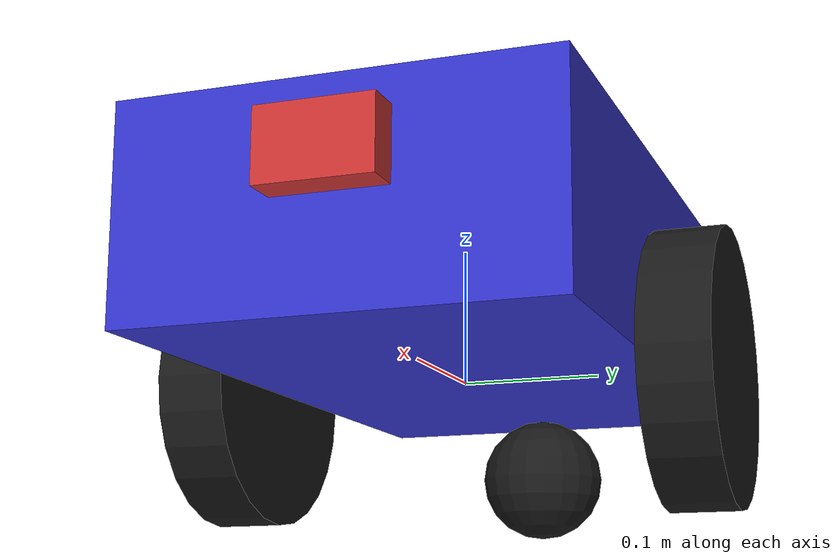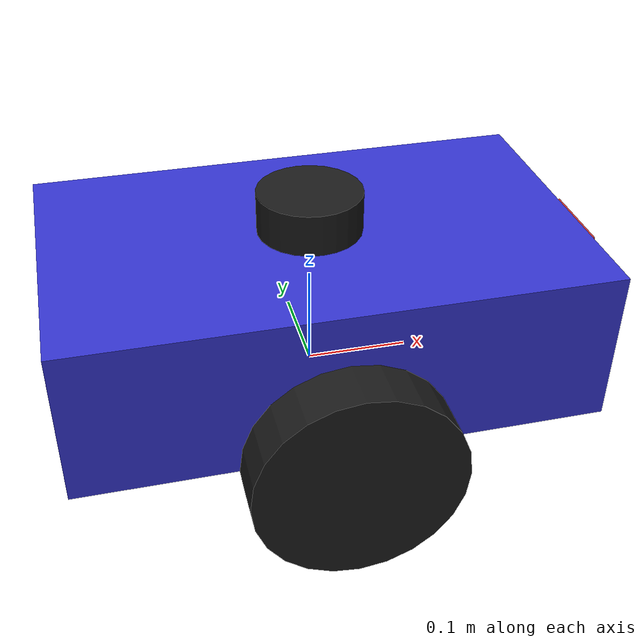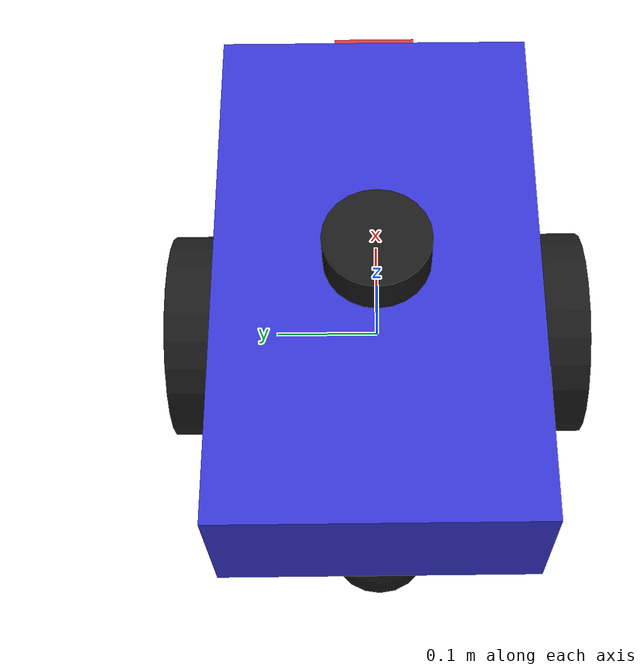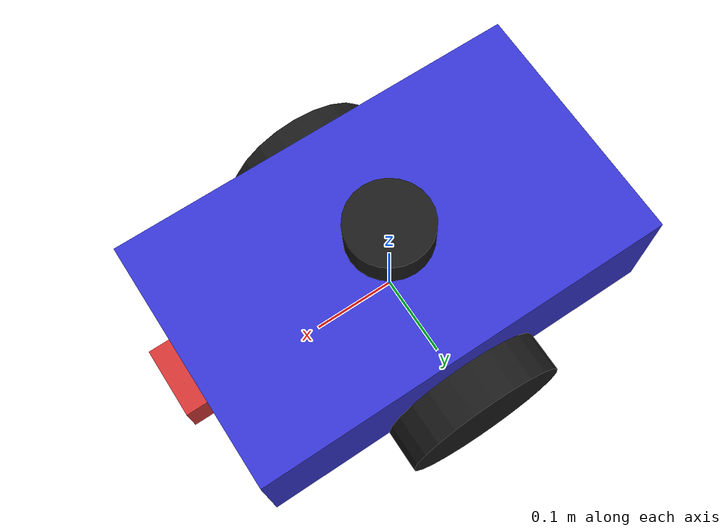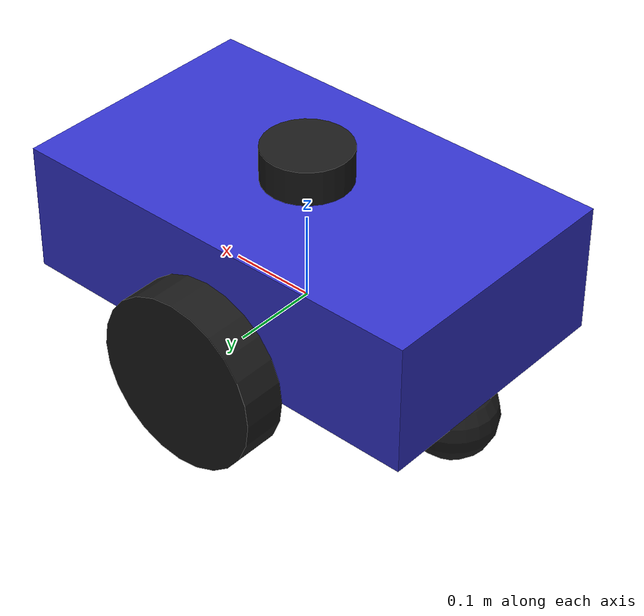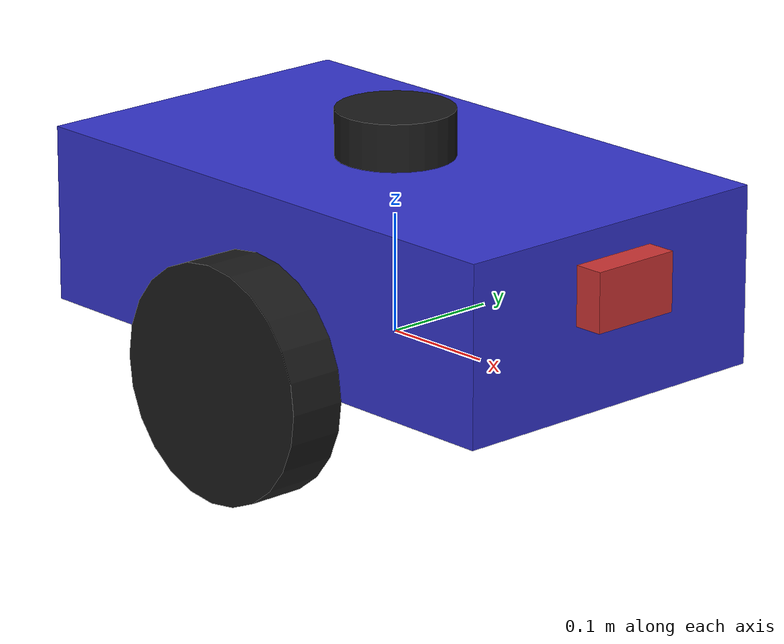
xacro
<?xml version="1.0"?>
<robot name="autonomous_robot" xmlns:xacro="http://www.ros.org/wiki/xacro">

  <!-- Define colors -->
  <material name="blue">
    <color rgba="0.2 0.2 0.8 1"/>
  </material>
  <material name="black">
    <color rgba="0.1 0.1 0.1 1"/>
  </material>
  <material name="red">
    <color rgba="0.8 0.2 0.2 1"/>
  </material>

  <!-- Base Link -->
  <link name="base_link">
    <visual>
      <geometry>
        <box size="0.5 0.3 0.15"/>
      </geometry>
      <origin xyz="0 0 0.075" rpy="0 0 0"/>
      <material name="blue"/>
    </visual>
    <collision>
      <geometry>
        <box size="0.5 0.3 0.15"/>
      </geometry>
      <origin xyz="0 0 0.075" rpy="0 0 0"/>
    </collision>
    <inertial>
      <mass value="10.0"/>
      <origin xyz="0 0 0.075" rpy="0 0 0"/>
      <inertia ixx="0.1" ixy="0.0" ixz="0.0" iyy="0.1" iyz="0.0" izz="0.1"/>
    </inertial>
  </link>

  <!-- Left Wheel -->
  <link name="left_wheel">
    <visual>
      <geometry>
        <cylinder radius="0.1" length="0.05"/>
      </geometry>
      <origin xyz="0 0 0" rpy="1.5708 0 0"/>
      <material name="black"/>
    </visual>
    <collision>
      <geometry>
        <cylinder radius="0.1" length="0.05"/>
      </geometry>
      <origin xyz="0 0 0" rpy="1.5708 0 0"/>
    </collision>
    <inertial>
      <mass value="1.0"/>
      <origin xyz="0 0 0" rpy="1.5708 0 0"/>
      <inertia ixx="0.01" ixy="0.0" ixz="0.0" iyy="0.01" iyz="0.0" izz="0.01"/>
    </inertial>
  </link>

  <joint name="left_wheel_joint" type="continuous">
    <parent link="base_link"/>
    <child link="left_wheel"/>
    <origin xyz="0 0.175 0" rpy="0 0 0"/>
    <axis xyz="0 1 0"/>
  </joint>

  <!-- Right Wheel -->
  <link name="right_wheel">
    <visual>
      <geometry>
        <cylinder radius="0.1" length="0.05"/>
      </geometry>
      <origin xyz="0 0 0" rpy="1.5708 0 0"/>
      <material name="black"/>
    </visual>
    <collision>
      <geometry>
        <cylinder radius="0.1" length="0.05"/>
      </geometry>
      <origin xyz="0 0 0" rpy="1.5708 0 0"/>
    </collision>
    <inertial>
      <mass value="1.0"/>
      <origin xyz="0 0 0" rpy="1.5708 0 0"/>
      <inertia ixx="0.01" ixy="0.0" ixz="0.0" iyy="0.01" iyz="0.0" izz="0.01"/>
    </inertial>
  </link>

  <joint name="right_wheel_joint" type="continuous">
    <parent link="base_link"/>
    <child link="right_wheel"/>
    <origin xyz="0 -0.175 0" rpy="0 0 0"/>
    <axis xyz="0 1 0"/>
  </joint>

  <!-- Caster Wheel -->
  <link name="caster_wheel">
    <visual>
      <geometry>
        <sphere radius="0.05"/>
      </geometry>
      <material name="black"/>
    </visual>
    <collision>
      <geometry>
        <sphere radius="0.05"/>
      </geometry>
    </collision>
    <inertial>
      <mass value="0.5"/>
      <inertia ixx="0.001" ixy="0.0" ixz="0.0" iyy="0.001" iyz="0.0" izz="0.001"/>
    </inertial>
  </link>

  <joint name="caster_wheel_joint" type="fixed">
    <parent link="base_link"/>
    <child link="caster_wheel"/>
    <origin xyz="-0.2 0 -0.05" rpy="0 0 0"/>
  </joint>

  <!-- Camera Link -->
  <link name="camera_link">
    <visual>
      <geometry>
        <box size="0.05 0.08 0.05"/>
      </geometry>
      <material name="red"/>
    </visual>
    <collision>
      <geometry>
        <box size="0.05 0.08 0.05"/>
      </geometry>
    </collision>
    <inertial>
      <mass value="0.1"/>
      <inertia ixx="0.0001" ixy="0.0" ixz="0.0" iyy="0.0001" iyz="0.0" izz="0.0001"/>
    </inertial>
  </link>

  <joint name="camera_joint" type="fixed">
    <parent link="base_link"/>
    <child link="camera_link"/>
    <origin xyz="0.25 0 0.1" rpy="0 0 0"/>
  </joint>

  <!-- Lidar Link -->
  <link name="lidar_link">
    <visual>
      <geometry>
        <cylinder radius="0.05" length="0.04"/>
      </geometry>
      <material name="black"/>
    </visual>
    <collision>
      <geometry>
        <cylinder radius="0.05" length="0.04"/>
      </geometry>
    </collision>
    <inertial>
      <mass value="0.2"/>
      <inertia ixx="0.0001" ixy="0.0" ixz="0.0" iyy="0.0001" iyz="0.0" izz="0.0001"/>
    </inertial>
  </link>

  <joint name="lidar_joint" type="fixed">
    <parent link="base_link"/>
    <child link="lidar_link"/>
    <origin xyz="0 0 0.17" rpy="0 0 0"/>
  </joint>

  <!-- Gazebo Differential Drive Plugin -->
  <gazebo>
    <plugin name="differential_drive_controller" filename="libgazebo_ros_diff_drive.so">
      <update_rate>50</update_rate>
      <left_joint>left_wheel_joint</left_joint>
      <right_joint>right_wheel_joint</right_joint>
      <wheel_separation>0.35</wheel_separation>
      <wheel_diameter>0.2</wheel_diameter>
      <max_wheel_torque>20</max_wheel_torque>
      <max_wheel_acceleration>1.0</max_wheel_acceleration>
      <command_topic>cmd_vel</command_topic>
      <publish_odom>true</publish_odom>
      <publish_odom_tf>true</publish_odom_tf>
      <publish_wheel_tf>false</publish_wheel_tf>
      <odometry_topic>odom</odometry_topic>
      <odometry_frame>odom</odometry_frame>
      <robot_base_frame>base_link</robot_base_frame>
    </plugin>
  </gazebo>

  <!-- Gazebo Camera Plugin -->
  <gazebo reference="camera_link">
    <sensor type="camera" name="camera">
      <update_rate>30.0</update_rate>
      <camera name="front_camera">
        <horizontal_fov>1.3962634</horizontal_fov>
        <image>
          <width>640</width>
          <height>480</height>
          <format>R8G8B8</format>
        </image>
        <clip>
          <near>0.02</near>
          <far>300</far>
        </clip>
        <noise>
          <type>gaussian</type>
          <mean>0.0</mean>
          <stddev>0.007</stddev>
        </noise>
      </camera>
      <plugin name="camera_controller" filename="libgazebo_ros_camera.so">
        <ros>
          <namespace>/</namespace>
          <remapping>image_raw:=camera/image_raw</remapping>
          <remapping>camera_info:=camera/camera_info</remapping>
        </ros>
        <camera_name>camera</camera_name>
        <frame_name>camera_link</frame_name>
      </plugin>
    </sensor>
  </gazebo>

  <!-- Gazebo Lidar Plugin -->
  <gazebo reference="lidar_link">
    <sensor type="ray" name="lidar">
      <pose>0 0 0 0 0 0</pose>
      <visualize>true</visualize>
      <update_rate>10</update_rate>
      <ray>
        <scan>
          <horizontal>
            <samples>360</samples>
            <resolution>1</resolution>
            <min_angle>-3.14159</min_angle>
            <max_angle>3.14159</max_angle>
          </horizontal>
        </scan>
        <range>
          <min>0.10</min>
          <max>10.0</max>
          <resolution>0.01</resolution>
        </range>
        <noise>
          <type>gaussian</type>
          <mean>0.0</mean>
          <stddev>0.01</stddev>
        </noise>
      </ray>
      <plugin name="lidar_controller" filename="libgazebo_ros_ray_sensor.so">
        <ros>
          <namespace>/</namespace>
          <remapping>~/out:=scan</remapping>
        </ros>
        <output_type>sensor_msgs/LaserScan</output_type>
        <frame_name>lidar_link</frame_name>
      </plugin>
    </sensor>
  </gazebo>

  <!-- Gazebo colors -->
  <gazebo reference="base_link">
    <material>Gazebo/Blue</material>
  </gazebo>
  <gazebo reference="left_wheel">
    <material>Gazebo/Black</material>
  </gazebo>
  <gazebo reference="right_wheel">
    <material>Gazebo/Black</material>
  </gazebo>
  <gazebo reference="caster_wheel">
    <material>Gazebo/Black</material>
    <mu1>0.0</mu1>
    <mu2>0.0</mu2>
  </gazebo>
  <gazebo reference="camera_link">
    <material>Gazebo/Red</material>
  </gazebo>
  <gazebo reference="lidar_link">
    <material>Gazebo/Black</material>
  </gazebo>

</robot>
